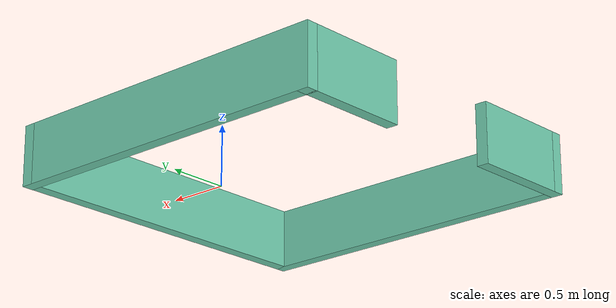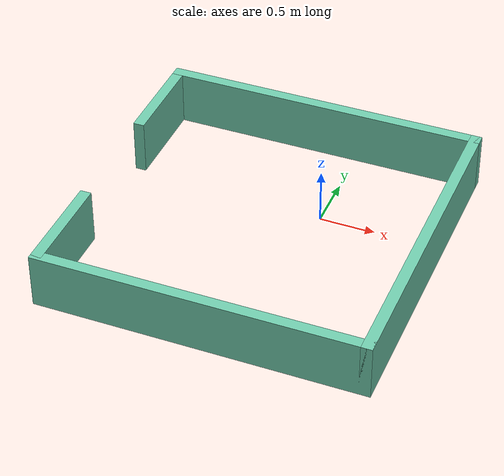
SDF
<?xml version='1.0'?>
<sdf version='1.6'>
  <model name='EmptyArea'>
    <pose frame=''>-0.34 -0.454 0 0 -0 0</pose>
    <link name='Wall_0'>
      <collision name='Wall_0_Collision'>
        <geometry>
          <box>
            <size>2.95 0.1 0.5</size>
          </box>
        </geometry>
        <pose frame=''>0 0 0.25 0 -0 0</pose>
      </collision>
      <visual name='Wall_0_Visual'>
        <pose frame=''>0 0 0.25 0 -0 0</pose>
        <geometry>
          <box>
            <size>2.95 0.1 0.5</size>
          </box>
        </geometry>
        <material>
          <script>
            <uri>file://media/materials/scripts/gazebo.material</uri>
            <name>Gazebo/Grey</name>
          </script>
          <ambient>0.435294 0.796078 0.67451 1</ambient>
        </material>
      </visual>
      <pose frame=''>0 -1.425 0 0 -0 0</pose>
    </link>
    <link name='Wall_3'>
      <collision name='Wall_3_Collision'>
        <geometry>
          <box>
            <size>2.95 0.1 0.5</size>
          </box>
        </geometry>
        <pose frame=''>0 0 0.25 0 -0 0</pose>
      </collision>
      <visual name='Wall_3_Visual'>
        <pose frame=''>0 0 0.25 0 -0 0</pose>
        <geometry>
          <box>
            <size>2.95 0.1 0.5</size>
          </box>
        </geometry>
        <material>
          <script>
            <uri>file://media/materials/scripts/gazebo.material</uri>
            <name>Gazebo/Grey</name>
          </script>
          <ambient>0.435294 0.796078 0.67451 1</ambient>
        </material>
      </visual>
      <pose frame=''>1.425 0 0 0 -0 1.5708</pose>
    </link>
    <link name='Wall_4'>
      <collision name='Wall_4_Collision'>
        <geometry>
          <box>
            <size>2.95 0.1 0.5</size>
          </box>
        </geometry>
        <pose frame=''>0 0 0.25 0 -0 0</pose>
      </collision>
      <visual name='Wall_4_Visual'>
        <pose frame=''>0 0 0.25 0 -0 0</pose>
        <geometry>
          <box>
            <size>2.95 0.1 0.5</size>
          </box>
        </geometry>
        <material>
          <script>
            <uri>file://media/materials/scripts/gazebo.material</uri>
            <name>Gazebo/Grey</name>
          </script>
          <ambient>0.435294 0.796078 0.67451 1</ambient>
        </material>
      </visual>
      <pose frame=''>0 1.425 0 0 -0 3.14159</pose>
    </link>
    <link name='Wall_5'>
      <collision name='Wall_5_Collision'>
        <geometry>
          <box>
            <size>0.95 0.1 0.5</size>
          </box>
        </geometry>
        <pose frame=''>0 0 0.25 0 -0 0</pose>
      </collision>
      <visual name='Wall_5_Visual'>
        <pose frame=''>0 0 0.25 0 -0 0</pose>
        <geometry>
          <box>
            <size>0.95 0.1 0.5</size>
          </box>
        </geometry>
        <material>
          <script>
            <uri>file://media/materials/scripts/gazebo.material</uri>
            <name>Gazebo/Grey</name>
          </script>
          <ambient>0.435294 0.796078 0.67451 1</ambient>
        </material>
      </visual>
      <pose frame=''>-1.425 1 0 0 0 -1.5708</pose>
    </link>
    <link name='Wall_7'>
      <collision name='Wall_7_Collision'>
        <geometry>
          <box>
            <size>0.95 0.1 0.5</size>
          </box>
        </geometry>
        <pose frame=''>0 0 0.25 0 -0 0</pose>
      </collision>
      <visual name='Wall_7_Visual'>
        <pose frame=''>0 0 0.25 0 -0 0</pose>
        <geometry>
          <box>
            <size>0.95 0.1 0.5</size>
          </box>
        </geometry>
        <material>
          <script>
            <uri>file://media/materials/scripts/gazebo.material</uri>
            <name>Gazebo/Grey</name>
          </script>
          <ambient>0.435294 0.796078 0.67451 1</ambient>
        </material>
      </visual>
      <pose frame=''>-1.425 -1 0 0 -0 1.5708</pose>
    </link>
    <static>1</static>
  </model>
</sdf>
